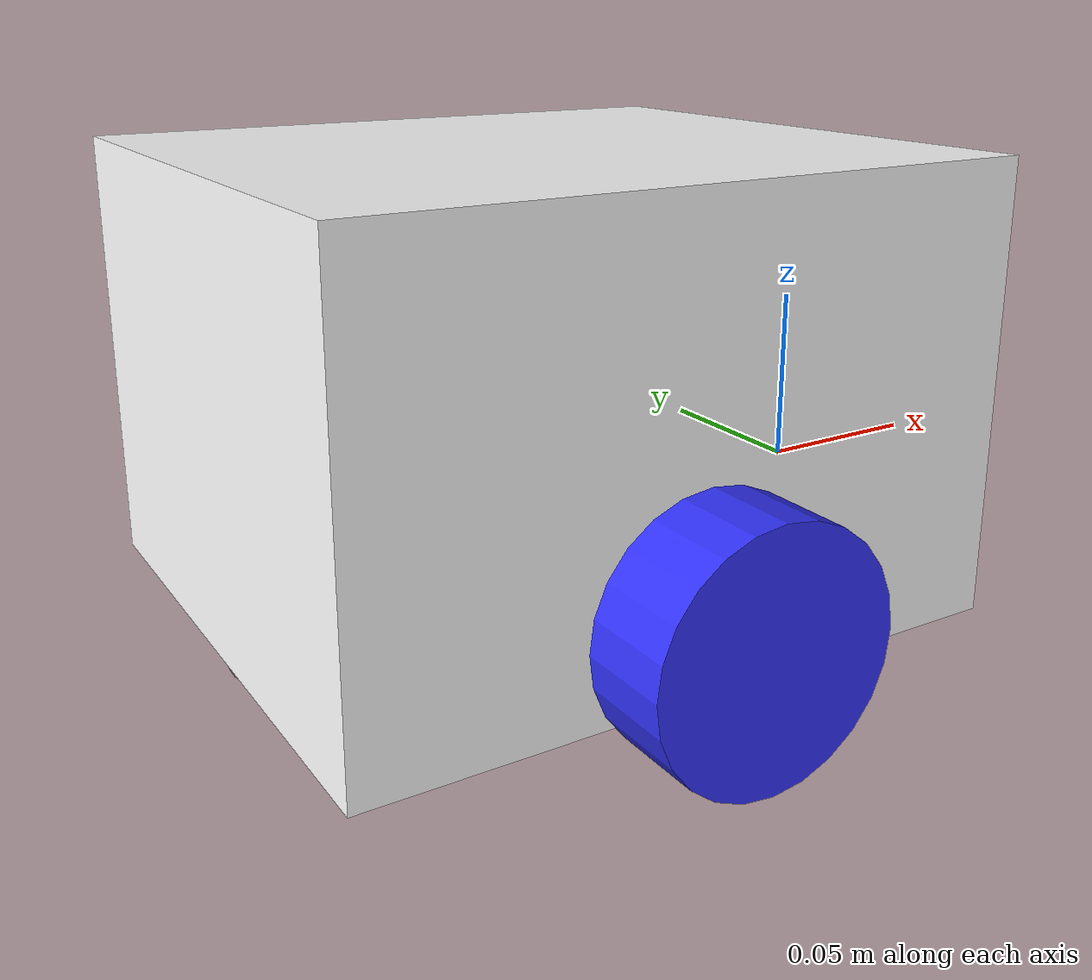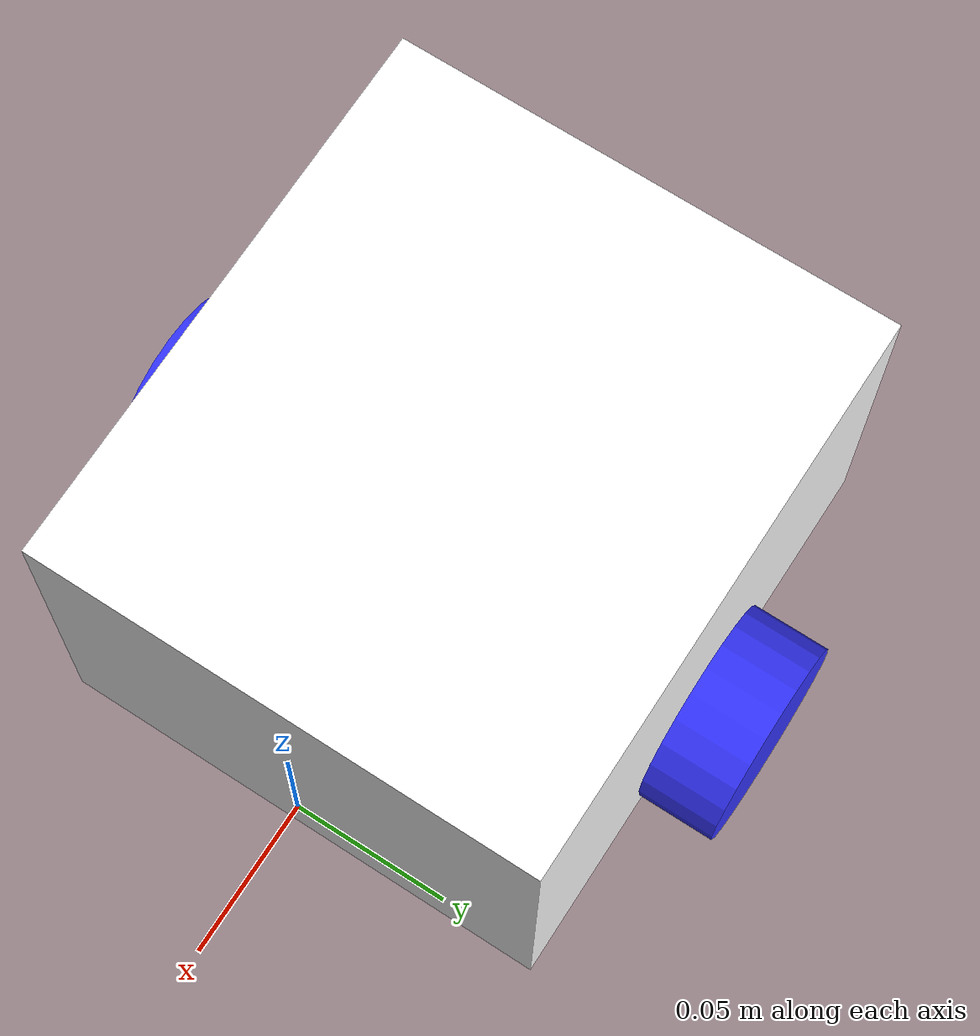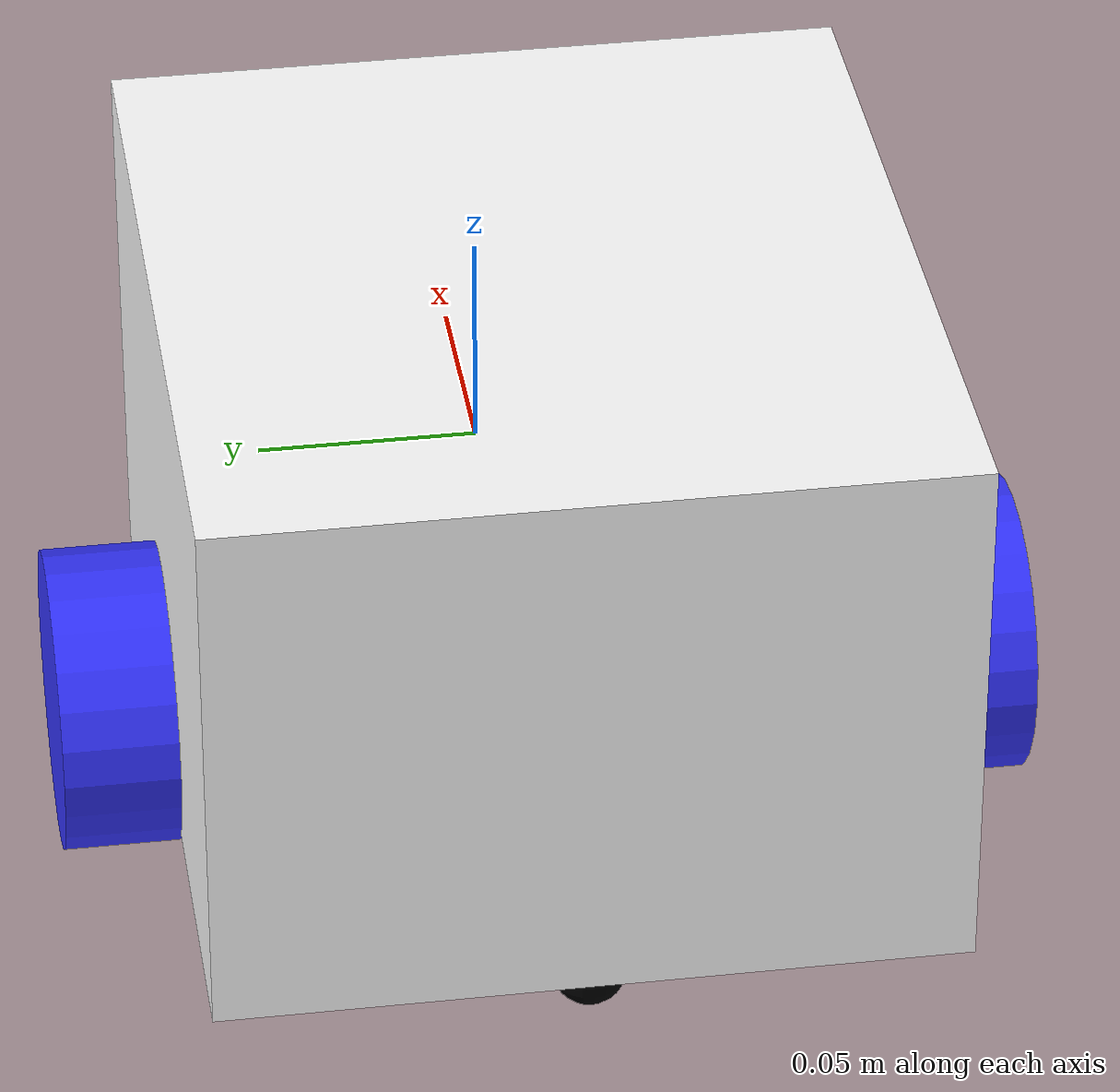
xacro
<?xml version="1.0"?>
<robot xmlns:xacro="http://www.ros.org/wiki/xacro" name="robot">
     <xacro:include filename='inertial_macros.xacro' />
     <xacro:include filename="ros2_control.xacro" />
     <xacro:include filename="robot_core.xacro" />
     <xacro:include filename="colors.xacro" />

</robot>

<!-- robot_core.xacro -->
<robot xmlns:xacro="http://www.ros.org/wiki/xacro">
    <link name="base_link">
    </link>
    <joint name="chassis_joint" type="fixed">
        <parent link="base_link" />
        <child link="chassis" />
        <origin xyz="-0.09 0 0" />
    </joint>
    <link name="chassis">
        <visual>
            <origin xyz="0 0 0.04" rpy="0 0 0 " />
            <geometry>
                <box size="0.18 0.16 0.12" />
            </geometry>
            <material name="white" />

        </visual>
        <collision>
            <origin xyz="0 0 0.04" rpy="0 0 0 " />
            <geometry>
                <box size="0.18 0.16 0.12" />
            </geometry>
        </collision>
        <xacro:inertial_box mass="0.92" x="0.18" y="0.16" z="0.12">
            <origin xyz="0 0 0.04" rpy="0 0 0 " />
        </xacro:inertial_box>
    </link>
    <gazebo reference="chassis">
        <material>Gazebo/White</material>
    </gazebo>

    <!-- left wheel-->
    <joint name="left_wheel_joint" type="continuous">
        <parent link="base_link" />
        <child link="left_wheel" />
        <origin xyz="-0.09 0.09225 0" rpy="-${pi/2} 0 0" />
        <axis xyz="0 0 1" />

    </joint>

    <link name="left_wheel">
        <visual>
            <geometry>
                <cylinder length="0.025" radius="0.0325" />
            </geometry>
            <material name="blue" />
        </visual>

        <xacro:inertial_cylinder mass="0.05" length="0.025" radius="0.0325">
            <origin xyz="0 0 0" rpy="0 0 0" />
        </xacro:inertial_cylinder>

        <collision>
            <geometry>
                <sphere radius="0.0325" />
            </geometry>
        </collision>
    </link>
    <gazebo reference="left_wheel">
        <material>Gazebo/Blue</material>
    </gazebo>

    <!-- right wheel-->
    <joint name="right_wheel_joint" type="continuous">
        <parent link="base_link" />
        <child link="right_wheel" />
        <origin xyz="-0.09 -0.09225 0" rpy="-${pi/2} 0 0" />
        <axis xyz="0 0 -1" />

    </joint>

    <link name="right_wheel">
        <visual>
            <geometry>
                <cylinder length="0.025" radius="0.0325" />
            </geometry>
            <material name="blue" />
        </visual>
        <collision>
            <geometry>
                <sphere radius="0.0325" />
            </geometry>
        </collision>
        <xacro:inertial_cylinder mass="0.05" length="0.025" radius="0.0325">
            <origin xyz="0 0 0" rpy="0 0 0" />
        </xacro:inertial_cylinder>
    </link>
    <gazebo reference="right_wheel">
        <material>Gazebo/Blue</material>
    </gazebo>
    <!--front
    caster wheel-->
    <joint name="front_caster_wheel_joint" type="fixed">
        <parent link="chassis" />
        <child link="front_caster_wheel" />
        <origin xyz="-0.08 0 -0.0225" rpy="0 0 0" />

    </joint>

    <link name="front_caster_wheel">
        <visual>
            <geometry>
                <sphere radius="0.008" />

            </geometry>
            <material name="black" />
        </visual>
        <collision>
            <geometry>
                <sphere radius="0.008" />

            </geometry>
        </collision>
        <xacro:inertial_sphere mass="0.01" radius="0.008">
            <origin xyz="-0.08 0 -0.0225" rpy="0 0 0" />
        </xacro:inertial_sphere>
    </link>
    <gazebo reference="front_caster_wheel">
        <material>Gazebo/Black</material>
        <mu1 value="0" />
        <mu2 value="0" />
    </gazebo>

    <!--back
    caster wheel-->
    <joint name="back_caster_wheel_joint" type="fixed">
        <parent link="chassis" />
        <child link="back_caster_wheel" />
        <origin xyz="0.08 0 -0.0225" rpy="0 0 0" />

    </joint>

    <link name="back_caster_wheel">
        <visual>
            <geometry>
                <sphere radius="0.008" />

            </geometry>
            <material name="black" />
        </visual>
        <collision>
            <geometry>
                <sphere radius="0.008" />

            </geometry>
        </collision>
        <xacro:inertial_sphere mass="0.001" radius="0.008">
            <origin xyz="0.08 0 -0.0225" rpy="0 0 0" />
        </xacro:inertial_sphere>
    </link>
    <gazebo reference="back_caster_wheel">
        <material>Gazebo/Black</material>
        <mu1 value="0" />
        <mu2 value="0" />
    </gazebo>
</robot>

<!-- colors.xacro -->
<robot xmlns:xacro="http://www.ros.org/wiki/xacro">

<material name="white">
    <color rgba="1 1 1 1"/>
</material>

<material name="orange">
    <color rgba="1 0.3 0.1 1"/>
</material>

<material name="blue">
    <color rgba="0.2 0.2 1 1"/>
</material>

<material name="black">
    <color rgba="0 0 0 1"/>
</material>

</robot>
